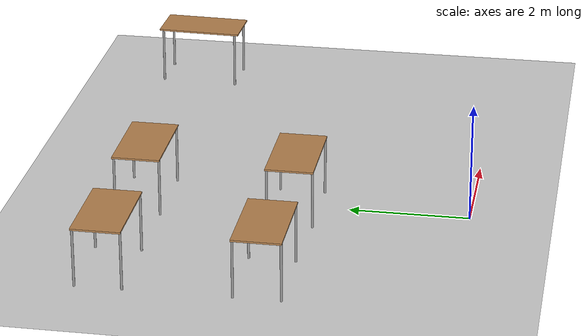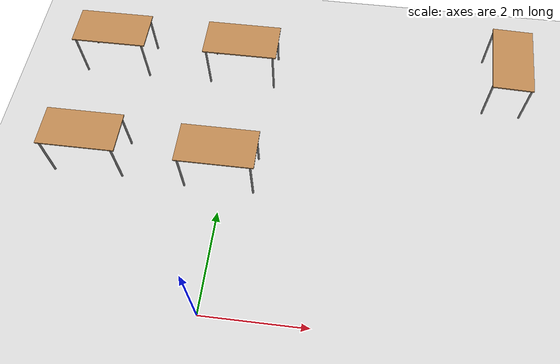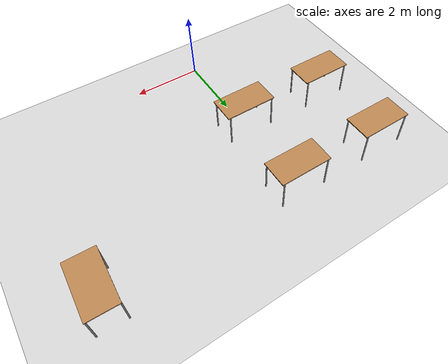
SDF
<sdf version="1.6">
 <world name="default">
  <model name="ground_plane">
   <static>1</static>
   <link name="link">
    <collision name="collision">
     <geometry><plane><normal>0 0 1</normal><size>100 100</size></plane></geometry>
     <surface>
      <contact><collide_bitmask>65535</collide_bitmask></contact>
      <friction><ode><mu>100</mu><mu2>50</mu2></ode></friction>
     </surface>
    </collision>
    <visual name="visual">
     <cast_shadows>0</cast_shadows>
     <geometry><plane><normal>0 0 1</normal><size>100 100</size></plane></geometry>
     <material>
      <script><uri>file://media/materials/scripts/gazebo.material</uri><name>Gazebo/Grey</name></script>
     </material>
    </visual>
   </link>
  </model>
  <model name="table">
   <static>1</static>
   <link name="link">
    <collision name="surface">
     <pose>0 0 1 0 -0 0</pose>
     <geometry><box><size>1.5 0.8 0.03</size></box></geometry>
     <surface><friction><ode><mu>0.6</mu><mu2>0.6</mu2></ode></friction></surface>
    </collision>
    <visual name="visual1">
     <pose>0 0 1 0 -0 0</pose>
     <geometry><box><size>1.5 0.8 0.03</size></box></geometry>
     <material>
      <script><uri>file://media/materials/scripts/gazebo.material</uri><name>Gazebo/Wood</name></script>
     </material>
    </visual>
    <collision name="front_left_leg">
     <pose>0.68 0.38 0.5 0 -0 0</pose>
     <geometry><cylinder><radius>0.02</radius><length>1</length></cylinder></geometry>
    </collision>
    <visual name="front_left_leg">
     <pose>0.68 0.38 0.5 0 -0 0</pose>
     <geometry><cylinder><radius>0.02</radius><length>1</length></cylinder></geometry>
     <material>
      <script><uri>file://media/materials/scripts/gazebo.material</uri><name>Gazebo/Grey</name></script>
     </material>
    </visual>
    <collision name="front_right_leg">
     <pose>0.68 -0.38 0.5 0 -0 0</pose>
     <geometry><cylinder><radius>0.02</radius><length>1</length></cylinder></geometry>
    </collision>
    <visual name="front_right_leg">
     <pose>0.68 -0.38 0.5 0 -0 0</pose>
     <geometry><cylinder><radius>0.02</radius><length>1</length></cylinder></geometry>
     <material>
      <script><uri>file://media/materials/scripts/gazebo.material</uri><name>Gazebo/Grey</name></script>
     </material>
    </visual>
    <collision name="back_right_leg">
     <pose>-0.68 -0.38 0.5 0 -0 0</pose>
     <geometry><cylinder><radius>0.02</radius><length>1</length></cylinder></geometry>
    </collision>
    <visual name="back_right_leg">
     <pose>-0.68 -0.38 0.5 0 -0 0</pose>
     <geometry><cylinder><radius>0.02</radius><length>1</length></cylinder></geometry>
     <material>
      <script><uri>file://media/materials/scripts/gazebo.material</uri><name>Gazebo/Grey</name></script>
     </material>
    </visual>
    <collision name="back_left_leg">
     <pose>-0.68 0.38 0.5 0 -0 0</pose>
     <geometry><cylinder><radius>0.02</radius><length>1</length></cylinder></geometry>
    </collision>
    <visual name="back_left_leg">
     <pose>-0.68 0.38 0.5 0 -0 0</pose>
     <geometry><cylinder><radius>0.02</radius><length>1</length></cylinder></geometry>
     <material>
      <script><uri>file://media/materials/scripts/gazebo.material</uri><name>Gazebo/Grey</name></script>
     </material>
    </visual>
   </link>
   <pose>-2.71961 5.44402 0 0 -0 0</pose>
  </model>
  <model name="table_0">
   <static>1</static>
   <link name="link">
    <collision name="surface">
     <pose>0 0 1 0 -0 0</pose>
     <geometry><box><size>1.5 0.8 0.03</size></box></geometry>
     <surface><friction><ode><mu>0.6</mu><mu2>0.6</mu2></ode></friction></surface>
    </collision>
    <visual name="visual1">
     <pose>0 0 1 0 -0 0</pose>
     <geometry><box><size>1.5 0.8 0.03</size></box></geometry>
     <material>
      <script><uri>file://media/materials/scripts/gazebo.material</uri><name>Gazebo/Wood</name></script>
     </material>
    </visual>
    <collision name="front_left_leg">
     <pose>0.68 0.38 0.5 0 -0 0</pose>
     <geometry><cylinder><radius>0.02</radius><length>1</length></cylinder></geometry>
    </collision>
    <visual name="front_left_leg">
     <pose>0.68 0.38 0.5 0 -0 0</pose>
     <geometry><cylinder><radius>0.02</radius><length>1</length></cylinder></geometry>
     <material>
      <script><uri>file://media/materials/scripts/gazebo.material</uri><name>Gazebo/Grey</name></script>
     </material>
    </visual>
    <collision name="front_right_leg">
     <pose>0.68 -0.38 0.5 0 -0 0</pose>
     <geometry><cylinder><radius>0.02</radius><length>1</length></cylinder></geometry>
    </collision>
    <visual name="front_right_leg">
     <pose>0.68 -0.38 0.5 0 -0 0</pose>
     <geometry><cylinder><radius>0.02</radius><length>1</length></cylinder></geometry>
     <material>
      <script><uri>file://media/materials/scripts/gazebo.material</uri><name>Gazebo/Grey</name></script>
     </material>
    </visual>
    <collision name="back_right_leg">
     <pose>-0.68 -0.38 0.5 0 -0 0</pose>
     <geometry><cylinder><radius>0.02</radius><length>1</length></cylinder></geometry>
    </collision>
    <visual name="back_right_leg">
     <pose>-0.68 -0.38 0.5 0 -0 0</pose>
     <geometry><cylinder><radius>0.02</radius><length>1</length></cylinder></geometry>
     <material>
      <script><uri>file://media/materials/scripts/gazebo.material</uri><name>Gazebo/Grey</name></script>
     </material>
    </visual>
    <collision name="back_left_leg">
     <pose>-0.68 0.38 0.5 0 -0 0</pose>
     <geometry><cylinder><radius>0.02</radius><length>1</length></cylinder></geometry>
    </collision>
    <visual name="back_left_leg">
     <pose>-0.68 0.38 0.5 0 -0 0</pose>
     <geometry><cylinder><radius>0.02</radius><length>1</length></cylinder></geometry>
     <material>
      <script><uri>file://media/materials/scripts/gazebo.material</uri><name>Gazebo/Grey</name></script>
     </material>
    </visual>
   </link>
   <pose>-2.68825 2.9491 0 0 -0 0</pose>
  </model>
  <model name="table_1">
   <static>1</static>
   <link name="link">
    <collision name="surface">
     <pose>0 0 1 0 -0 0</pose>
     <geometry><box><size>1.5 0.8 0.03</size></box></geometry>
     <surface><friction><ode><mu>0.6</mu><mu2>0.6</mu2></ode></friction></surface>
    </collision>
    <visual name="visual1">
     <pose>0 0 1 0 -0 0</pose>
     <geometry><box><size>1.5 0.8 0.03</size></box></geometry>
     <material>
      <script><uri>file://media/materials/scripts/gazebo.material</uri><name>Gazebo/Wood</name></script>
     </material>
    </visual>
    <collision name="front_left_leg">
     <pose>0.68 0.38 0.5 0 -0 0</pose>
     <geometry><cylinder><radius>0.02</radius><length>1</length></cylinder></geometry>
    </collision>
    <visual name="front_left_leg">
     <pose>0.68 0.38 0.5 0 -0 0</pose>
     <geometry><cylinder><radius>0.02</radius><length>1</length></cylinder></geometry>
     <material>
      <script><uri>file://media/materials/scripts/gazebo.material</uri><name>Gazebo/Grey</name></script>
     </material>
    </visual>
    <collision name="front_right_leg">
     <pose>0.68 -0.38 0.5 0 -0 0</pose>
     <geometry><cylinder><radius>0.02</radius><length>1</length></cylinder></geometry>
    </collision>
    <visual name="front_right_leg">
     <pose>0.68 -0.38 0.5 0 -0 0</pose>
     <geometry><cylinder><radius>0.02</radius><length>1</length></cylinder></geometry>
     <material>
      <script><uri>file://media/materials/scripts/gazebo.material</uri><name>Gazebo/Grey</name></script>
     </material>
    </visual>
    <collision name="back_right_leg">
     <pose>-0.68 -0.38 0.5 0 -0 0</pose>
     <geometry><cylinder><radius>0.02</radius><length>1</length></cylinder></geometry>
    </collision>
    <visual name="back_right_leg">
     <pose>-0.68 -0.38 0.5 0 -0 0</pose>
     <geometry><cylinder><radius>0.02</radius><length>1</length></cylinder></geometry>
     <material>
      <script><uri>file://media/materials/scripts/gazebo.material</uri><name>Gazebo/Grey</name></script>
     </material>
    </visual>
    <collision name="back_left_leg">
     <pose>-0.68 0.38 0.5 0 -0 0</pose>
     <geometry><cylinder><radius>0.02</radius><length>1</length></cylinder></geometry>
    </collision>
    <visual name="back_left_leg">
     <pose>-0.68 0.38 0.5 0 -0 0</pose>
     <geometry><cylinder><radius>0.02</radius><length>1</length></cylinder></geometry>
     <material>
      <script><uri>file://media/materials/scripts/gazebo.material</uri><name>Gazebo/Grey</name></script>
     </material>
    </visual>
   </link>
   <pose>-0.015948 5.44236 0 0 -0 0</pose>
  </model>
  <model name="table_2">
   <static>1</static>
   <link name="link">
    <collision name="surface">
     <pose>0 0 1 0 -0 0</pose>
     <geometry><box><size>1.5 0.8 0.03</size></box></geometry>
     <surface><friction><ode><mu>0.6</mu><mu2>0.6</mu2></ode></friction></surface>
    </collision>
    <visual name="visual1">
     <pose>0 0 1 0 -0 0</pose>
     <geometry><box><size>1.5 0.8 0.03</size></box></geometry>
     <material>
      <script><uri>file://media/materials/scripts/gazebo.material</uri><name>Gazebo/Wood</name></script>
     </material>
    </visual>
    <collision name="front_left_leg">
     <pose>0.68 0.38 0.5 0 -0 0</pose>
     <geometry><cylinder><radius>0.02</radius><length>1</length></cylinder></geometry>
    </collision>
    <visual name="front_left_leg">
     <pose>0.68 0.38 0.5 0 -0 0</pose>
     <geometry><cylinder><radius>0.02</radius><length>1</length></cylinder></geometry>
     <material>
      <script><uri>file://media/materials/scripts/gazebo.material</uri><name>Gazebo/Grey</name></script>
     </material>
    </visual>
    <collision name="front_right_leg">
     <pose>0.68 -0.38 0.5 0 -0 0</pose>
     <geometry><cylinder><radius>0.02</radius><length>1</length></cylinder></geometry>
    </collision>
    <visual name="front_right_leg">
     <pose>0.68 -0.38 0.5 0 -0 0</pose>
     <geometry><cylinder><radius>0.02</radius><length>1</length></cylinder></geometry>
     <material>
      <script><uri>file://media/materials/scripts/gazebo.material</uri><name>Gazebo/Grey</name></script>
     </material>
    </visual>
    <collision name="back_right_leg">
     <pose>-0.68 -0.38 0.5 0 -0 0</pose>
     <geometry><cylinder><radius>0.02</radius><length>1</length></cylinder></geometry>
    </collision>
    <visual name="back_right_leg">
     <pose>-0.68 -0.38 0.5 0 -0 0</pose>
     <geometry><cylinder><radius>0.02</radius><length>1</length></cylinder></geometry>
     <material>
      <script><uri>file://media/materials/scripts/gazebo.material</uri><name>Gazebo/Grey</name></script>
     </material>
    </visual>
    <collision name="back_left_leg">
     <pose>-0.68 0.38 0.5 0 -0 0</pose>
     <geometry><cylinder><radius>0.02</radius><length>1</length></cylinder></geometry>
    </collision>
    <visual name="back_left_leg">
     <pose>-0.68 0.38 0.5 0 -0 0</pose>
     <geometry><cylinder><radius>0.02</radius><length>1</length></cylinder></geometry>
     <material>
      <script><uri>file://media/materials/scripts/gazebo.material</uri><name>Gazebo/Grey</name></script>
     </material>
    </visual>
   </link>
   <pose>-0.070965 2.88606 0 0 -0 0</pose>
  </model>
  <model name="table_4">
   <static>1</static>
   <link name="link">
    <collision name="surface">
     <pose>0 0 1 0 -0 0</pose>
     <geometry><box><size>1.5 0.8 0.03</size></box></geometry>
     <surface><friction><ode><mu>0.6</mu><mu2>0.6</mu2></ode></friction></surface>
    </collision>
    <visual name="visual1">
     <pose>0 0 1 0 -0 0</pose>
     <geometry><box><size>1.5 0.8 0.03</size></box></geometry>
     <material>
      <script><uri>file://media/materials/scripts/gazebo.material</uri><name>Gazebo/Wood</name></script>
     </material>
    </visual>
    <collision name="front_left_leg">
     <pose>0.68 0.38 0.5 0 -0 0</pose>
     <geometry><cylinder><radius>0.02</radius><length>1</length></cylinder></geometry>
    </collision>
    <visual name="front_left_leg">
     <pose>0.68 0.38 0.5 0 -0 0</pose>
     <geometry><cylinder><radius>0.02</radius><length>1</length></cylinder></geometry>
     <material>
      <script><uri>file://media/materials/scripts/gazebo.material</uri><name>Gazebo/Grey</name></script>
     </material>
    </visual>
    <collision name="front_right_leg">
     <pose>0.68 -0.38 0.5 0 -0 0</pose>
     <geometry><cylinder><radius>0.02</radius><length>1</length></cylinder></geometry>
    </collision>
    <visual name="front_right_leg">
     <pose>0.68 -0.38 0.5 0 -0 0</pose>
     <geometry><cylinder><radius>0.02</radius><length>1</length></cylinder></geometry>
     <material>
      <script><uri>file://media/materials/scripts/gazebo.material</uri><name>Gazebo/Grey</name></script>
     </material>
    </visual>
    <collision name="back_right_leg">
     <pose>-0.68 -0.38 0.5 0 -0 0</pose>
     <geometry><cylinder><radius>0.02</radius><length>1</length></cylinder></geometry>
    </collision>
    <visual name="back_right_leg">
     <pose>-0.68 -0.38 0.5 0 -0 0</pose>
     <geometry><cylinder><radius>0.02</radius><length>1</length></cylinder></geometry>
     <material>
      <script><uri>file://media/materials/scripts/gazebo.material</uri><name>Gazebo/Grey</name></script>
     </material>
    </visual>
    <collision name="back_left_leg">
     <pose>-0.68 0.38 0.5 0 -0 0</pose>
     <geometry><cylinder><radius>0.02</radius><length>1</length></cylinder></geometry>
    </collision>
    <visual name="back_left_leg">
     <pose>-0.68 0.38 0.5 0 -0 0</pose>
     <geometry><cylinder><radius>0.02</radius><length>1</length></cylinder></geometry>
     <material>
      <script><uri>file://media/materials/scripts/gazebo.material</uri><name>Gazebo/Grey</name></script>
     </material>
    </visual>
   </link>
   <pose>5.46255 5.57748 0 0 0 -1.60604</pose>
  </model>
 </world>
</sdf>
